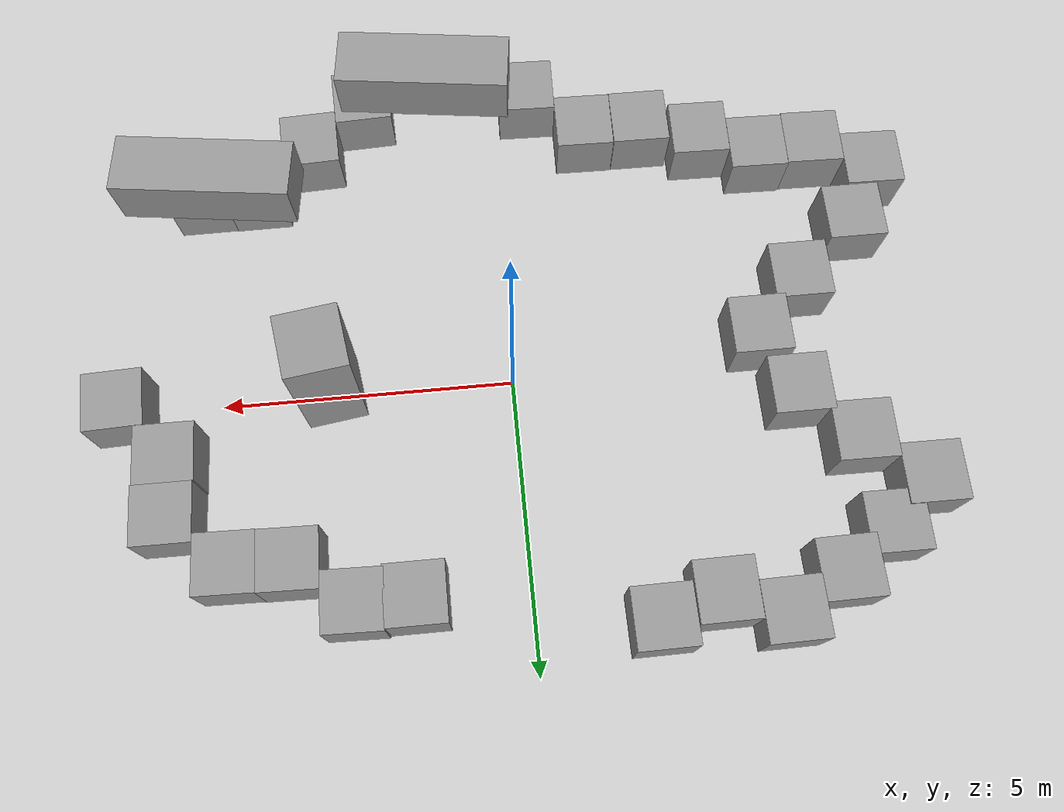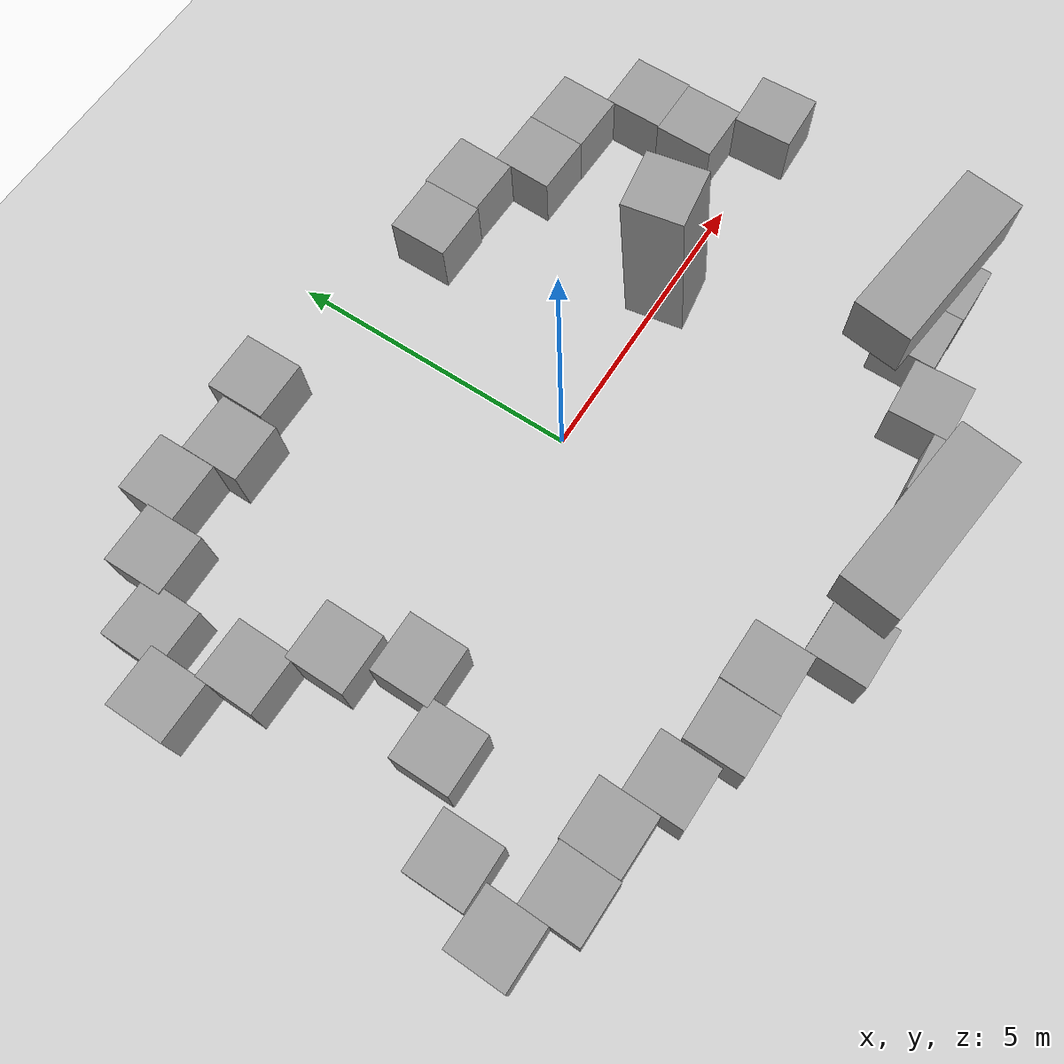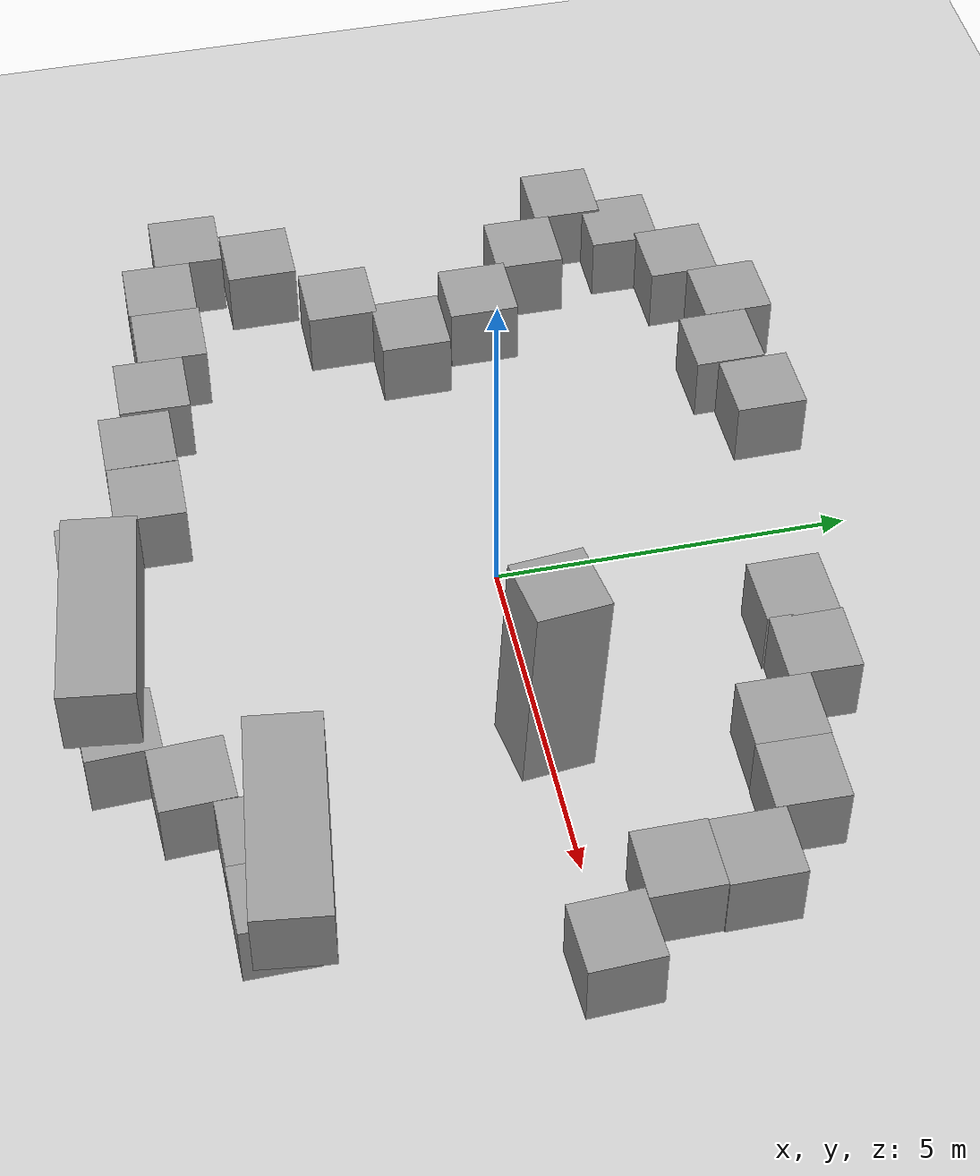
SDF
<sdf version="1.6">
 <world name="default">
  <light name="sun" type="directional">
   <pose>0 0 10 0 -0 0</pose>
   <diffuse>0.8 0.8 0.8 1</diffuse>
   <specular>0.2 0.2 0.2 1</specular>
   <attenuation>
    <range>1000</range>
    <constant>0.9</constant>
    <linear>0.01</linear>
    <quadratic>0.001</quadratic>
   </attenuation>
   <direction>-0.5 0.1 -0.9</direction>
  </light>
  <model name="ground_plane">
   <static>1</static>
   <link name="link">
    <collision name="collision">
     <geometry><plane><normal>0 0 1</normal><size>100 100</size></plane></geometry>
     <surface><friction><ode><mu>100</mu><mu2>50</mu2></ode></friction></surface>
    </collision>
    <visual name="visual">
     <cast_shadows>0</cast_shadows>
     <geometry><plane><normal>0 0 1</normal><size>100 100</size></plane></geometry>
     <material>
      <script><uri>file://media/materials/scripts/gazebo.material</uri><name>Gazebo/Grey</name></script>
     </material>
    </visual>
   </link>
  </model>
  <gravity>0 0 -9.8</gravity>
  <magnetic_field>6e-06 2.3e-05 -4.2e-05</magnetic_field>
  <atmosphere type="adiabatic"/>
  <physics name="default_physics" default="0" type="ode">
   <max_step_size>0.001</max_step_size>
   <real_time_factor>1</real_time_factor>
   <real_time_update_rate>1000</real_time_update_rate>
  </physics>
  <scene><ambient>0.4 0.4 0.4 1</ambient><background>0.7 0.7 0.7 1</background><shadows>1</shadows></scene>
  <audio><device>default</device></audio>
  <spherical_coordinates>
   <surface_model>EARTH_WGS84</surface_model>
   <latitude_deg>0</latitude_deg>
   <longitude_deg>0</longitude_deg>
   <elevation>0</elevation>
   <heading_deg>0</heading_deg>
  </spherical_coordinates>
  <model name="unit_box_0">
   <pose>1.84713 3.62294 0.5 0 -0 0</pose>
   <link name="link">
    <inertial>
     <mass>1</mass>
     <inertia>
      <ixx>0.166667</ixx>
      <ixy>0</ixy>
      <ixz>0</ixz>
      <iyy>0.166667</iyy>
      <iyz>0</iyz>
      <izz>0.166667</izz>
     </inertia>
    </inertial>
    <collision name="collision"><geometry><box><size>1 1 1</size></box></geometry></collision>
    <visual name="visual">
     <geometry><box><size>1 1 1</size></box></geometry>
     <material>
      <script><name>Gazebo/Grey</name><uri>file://media/materials/scripts/gazebo.material</uri></script>
     </material>
    </visual>
   </link>
  </model>
  <model name="unit_box_1">
   <pose>-1.98102 4.32508 0.5 0 -0 0.008716</pose>
   <link name="link">
    <inertial>
     <mass>1</mass>
     <inertia>
      <ixx>0.166667</ixx>
      <ixy>0</ixy>
      <ixz>0</ixz>
      <iyy>0.166667</iyy>
      <iyz>0</iyz>
      <izz>0.166667</izz>
     </inertia>
    </inertial>
    <collision name="collision"><geometry><box><size>1 1 1</size></box></geometry></collision>
    <visual name="visual">
     <geometry><box><size>1 1 1</size></box></geometry>
     <material>
      <script><name>Gazebo/Grey</name><uri>file://media/materials/scripts/gazebo.material</uri></script>
     </material>
    </visual>
   </link>
  </model>
  <model name="unit_box_2">
   <pose>-2.99925 4.0063 0.5 0 -0 0.008629</pose>
   <link name="link">
    <inertial>
     <mass>1</mass>
     <inertia>
      <ixx>0.166667</ixx>
      <ixy>0</ixy>
      <ixz>0</ixz>
      <iyy>0.166667</iyy>
      <iyz>0</iyz>
      <izz>0.166667</izz>
     </inertia>
    </inertial>
    <collision name="collision"><geometry><box><size>1 1 1</size></box></geometry></collision>
    <visual name="visual">
     <geometry><box><size>1 1 1</size></box></geometry>
     <material>
      <script><name>Gazebo/Grey</name><uri>file://media/materials/scripts/gazebo.material</uri></script>
     </material>
    </visual>
   </link>
  </model>
  <model name="unit_box_3">
   <pose>-4.00633 4.39911 0.5 0 -0 0.012286</pose>
   <link name="link">
    <inertial>
     <mass>1</mass>
     <inertia>
      <ixx>0.166667</ixx>
      <ixy>0</ixy>
      <ixz>0</ixz>
      <iyy>0.166667</iyy>
      <iyz>0</iyz>
      <izz>0.166667</izz>
     </inertia>
    </inertial>
    <collision name="collision"><geometry><box><size>1 1 1</size></box></geometry></collision>
    <visual name="visual">
     <geometry><box><size>1 1 1</size></box></geometry>
     <material>
      <script><name>Gazebo/Grey</name><uri>file://media/materials/scripts/gazebo.material</uri></script>
     </material>
    </visual>
   </link>
  </model>
  <model name="unit_box_4">
   <pose>-4.98355 3.84136 0.5 0 -0 0.012284</pose>
   <link name="link">
    <inertial>
     <mass>1</mass>
     <inertia>
      <ixx>0.166667</ixx>
      <ixy>0</ixy>
      <ixz>0</ixz>
      <iyy>0.166667</iyy>
      <iyz>0</iyz>
      <izz>0.166667</izz>
     </inertia>
    </inertial>
    <collision name="collision"><geometry><box><size>1 1 1</size></box></geometry></collision>
    <visual name="visual">
     <geometry><box><size>1 1 1</size></box></geometry>
     <material>
      <script><name>Gazebo/Grey</name><uri>file://media/materials/scripts/gazebo.material</uri></script>
     </material>
    </visual>
   </link>
  </model>
  <model name="unit_box_5">
   <pose>-6.61875 2.44429 0.5 0 0 -0.0059</pose>
   <link name="link">
    <inertial>
     <mass>1</mass>
     <inertia>
      <ixx>0.166667</ixx>
      <ixy>0</ixy>
      <ixz>0</ixz>
      <iyy>0.166667</iyy>
      <iyz>0</iyz>
      <izz>0.166667</izz>
     </inertia>
    </inertial>
    <collision name="collision"><geometry><box><size>1 1 1</size></box></geometry></collision>
    <visual name="visual">
     <geometry><box><size>1 1 1</size></box></geometry>
     <material>
      <script><name>Gazebo/Grey</name><uri>file://media/materials/scripts/gazebo.material</uri></script>
     </material>
    </visual>
   </link>
  </model>
  <model name="unit_box_6">
   <pose>-5.87131 3.17687 0.467482 0 0 -0.005916</pose>
   <link name="link">
    <inertial>
     <mass>1</mass>
     <inertia>
      <ixx>0.166667</ixx>
      <ixy>0</ixy>
      <ixz>0</ixz>
      <iyy>0.166667</iyy>
      <iyz>0</iyz>
      <izz>0.166667</izz>
     </inertia>
    </inertial>
    <collision name="collision"><geometry><box><size>1 1 1</size></box></geometry></collision>
    <visual name="visual">
     <geometry><box><size>1 1 1</size></box></geometry>
     <material>
      <script><name>Gazebo/Grey</name><uri>file://media/materials/scripts/gazebo.material</uri></script>
     </material>
    </visual>
   </link>
  </model>
  <model name="unit_box_7">
   <pose>-5.63953 1.64367 0.5 0 0 -0.010261</pose>
   <link name="link">
    <inertial>
     <mass>1</mass>
     <inertia>
      <ixx>0.166667</ixx>
      <ixy>0</ixy>
      <ixz>0</ixz>
      <iyy>0.166667</iyy>
      <iyz>0</iyz>
      <izz>0.166667</izz>
     </inertia>
    </inertial>
    <collision name="collision"><geometry><box><size>1 1 1</size></box></geometry></collision>
    <visual name="visual">
     <geometry><box><size>1 1 1</size></box></geometry>
     <material>
      <script><name>Gazebo/Grey</name><uri>file://media/materials/scripts/gazebo.material</uri></script>
     </material>
    </visual>
   </link>
  </model>
  <model name="unit_box_8">
   <pose>-4.73991 0.755255 0.504537 0 0 -1.5e-05</pose>
   <link name="link">
    <inertial>
     <mass>1</mass>
     <inertia>
      <ixx>0.166667</ixx>
      <ixy>0</ixy>
      <ixz>0</ixz>
      <iyy>0.166667</iyy>
      <iyz>0</iyz>
      <izz>0.166667</izz>
     </inertia>
    </inertial>
    <collision name="collision"><geometry><box><size>1 1 1</size></box></geometry></collision>
    <visual name="visual">
     <geometry><box><size>1 1 1</size></box></geometry>
     <material>
      <script><name>Gazebo/Grey</name><uri>file://media/materials/scripts/gazebo.material</uri></script>
     </material>
    </visual>
   </link>
  </model>
  <model name="unit_box_9">
   <pose>2.82459 3.64121 0.5 0 -0 -0.023665</pose>
   <link name="link">
    <inertial>
     <mass>1</mass>
     <inertia>
      <ixx>0.166667</ixx>
      <ixy>0</ixy>
      <ixz>0</ixz>
      <iyy>0.166667</iyy>
      <iyz>0</iyz>
      <izz>0.166667</izz>
     </inertia>
    </inertial>
    <collision name="collision"><geometry><box><size>1 1 1</size></box></geometry></collision>
    <visual name="visual">
     <geometry><box><size>1 1 1</size></box></geometry>
     <material>
      <script><name>Gazebo/Grey</name><uri>file://media/materials/scripts/gazebo.material</uri></script>
     </material>
    </visual>
   </link>
  </model>
  <model name="unit_box_10">
   <pose>3.80832 2.90521 0.499995 1e-05 -0 -0.022347</pose>
   <link name="link">
    <inertial>
     <mass>1</mass>
     <inertia>
      <ixx>0.166667</ixx>
      <ixy>0</ixy>
      <ixz>0</ixz>
      <iyy>0.166667</iyy>
      <iyz>0</iyz>
      <izz>0.166667</izz>
     </inertia>
    </inertial>
    <collision name="collision"><geometry><box><size>1 1 1</size></box></geometry></collision>
    <visual name="visual">
     <geometry><box><size>1 1 1</size></box></geometry>
     <material>
      <script><name>Gazebo/Grey</name><uri>file://media/materials/scripts/gazebo.material</uri></script>
     </material>
    </visual>
   </link>
  </model>
  <model name="unit_box_11">
   <pose>4.80791 2.87568 0.499995 1e-05 -0 -0.022347</pose>
   <link name="link">
    <inertial>
     <mass>1</mass>
     <inertia>
      <ixx>0.166667</ixx>
      <ixy>0</ixy>
      <ixz>0</ixz>
      <iyy>0.166667</iyy>
      <iyz>0</iyz>
      <izz>0.166667</izz>
     </inertia>
    </inertial>
    <collision name="collision"><geometry><box><size>1 1 1</size></box></geometry></collision>
    <visual name="visual">
     <geometry><box><size>1 1 1</size></box></geometry>
     <material>
      <script><name>Gazebo/Grey</name><uri>file://media/materials/scripts/gazebo.material</uri></script>
     </material>
    </visual>
   </link>
  </model>
  <model name="unit_box_12">
   <pose>-4.24627 -0.352512 0.5 0 -0 1e-05</pose>
   <link name="link">
    <inertial>
     <mass>1</mass>
     <inertia>
      <ixx>0.166667</ixx>
      <ixy>0</ixy>
      <ixz>0</ixz>
      <iyy>0.166667</iyy>
      <iyz>0</iyz>
      <izz>0.166667</izz>
     </inertia>
    </inertial>
    <collision name="collision"><geometry><box><size>1 1 1</size></box></geometry></collision>
    <visual name="visual">
     <geometry><box><size>1 1 1</size></box></geometry>
     <material>
      <script><name>Gazebo/Grey</name><uri>file://media/materials/scripts/gazebo.material</uri></script>
     </material>
    </visual>
   </link>
  </model>
  <model name="unit_box_13">
   <pose>-5.09581 -1.28623 0.5 0 -0 1e-05</pose>
   <link name="link">
    <inertial>
     <mass>1</mass>
     <inertia>
      <ixx>0.166667</ixx>
      <ixy>0</ixy>
      <ixz>0</ixz>
      <iyy>0.166667</iyy>
      <iyz>0</iyz>
      <izz>0.166667</izz>
     </inertia>
    </inertial>
    <collision name="collision"><geometry><box><size>1 1 1</size></box></geometry></collision>
    <visual name="visual">
     <geometry><box><size>1 1 1</size></box></geometry>
     <material>
      <script><name>Gazebo/Grey</name><uri>file://media/materials/scripts/gazebo.material</uri></script>
     </material>
    </visual>
   </link>
  </model>
  <model name="unit_box_14">
   <pose>-6.22091 -2.30561 0.5 0 -0 1e-05</pose>
   <link name="link">
    <inertial>
     <mass>1</mass>
     <inertia>
      <ixx>0.166667</ixx>
      <ixy>0</ixy>
      <ixz>0</ixz>
      <iyy>0.166667</iyy>
      <iyz>0</iyz>
      <izz>0.166667</izz>
     </inertia>
    </inertial>
    <collision name="collision"><geometry><box><size>1 1 1</size></box></geometry></collision>
    <visual name="visual">
     <geometry><box><size>1 1 1</size></box></geometry>
     <material>
      <script><name>Gazebo/Grey</name><uri>file://media/materials/scripts/gazebo.material</uri></script>
     </material>
    </visual>
   </link>
  </model>
  <model name="unit_box_15">
   <pose>-6.73539 -3.32737 0.5 0 0 -0.019647</pose>
   <link name="link">
    <inertial>
     <mass>1</mass>
     <inertia>
      <ixx>0.166667</ixx>
      <ixy>0</ixy>
      <ixz>0</ixz>
      <iyy>0.166667</iyy>
      <iyz>0</iyz>
      <izz>0.166667</izz>
     </inertia>
    </inertial>
    <collision name="collision"><geometry><box><size>1 1 1</size></box></geometry></collision>
    <visual name="visual">
     <geometry><box><size>1 1 1</size></box></geometry>
     <material>
      <script><name>Gazebo/Grey</name><uri>file://media/materials/scripts/gazebo.material</uri></script>
     </material>
    </visual>
   </link>
  </model>
  <model name="unit_box_16">
   <pose>-5.74521 -3.83863 0.5 -0 -0 -0.019634</pose>
   <link name="link">
    <inertial>
     <mass>1</mass>
     <inertia>
      <ixx>0.166667</ixx>
      <ixy>0</ixy>
      <ixz>0</ixz>
      <iyy>0.166667</iyy>
      <iyz>0</iyz>
      <izz>0.166667</izz>
     </inertia>
    </inertial>
    <collision name="collision"><geometry><box><size>1 1 1</size></box></geometry></collision>
    <visual name="visual">
     <geometry><box><size>1 1 1</size></box></geometry>
     <material>
      <script><name>Gazebo/Grey</name><uri>file://media/materials/scripts/gazebo.material</uri></script>
     </material>
    </visual>
   </link>
  </model>
  <model name="unit_box_17">
   <pose>-4.7446 -3.83329 0.5 0 -0 -0.01951</pose>
   <link name="link">
    <inertial>
     <mass>1</mass>
     <inertia>
      <ixx>0.166667</ixx>
      <ixy>0</ixy>
      <ixz>0</ixz>
      <iyy>0.166667</iyy>
      <iyz>0</iyz>
      <izz>0.166667</izz>
     </inertia>
    </inertial>
    <collision name="collision"><geometry><box><size>1 1 1</size></box></geometry></collision>
    <visual name="visual">
     <geometry><box><size>1 1 1</size></box></geometry>
     <material>
      <script><name>Gazebo/Grey</name><uri>file://media/materials/scripts/gazebo.material</uri></script>
     </material>
    </visual>
   </link>
  </model>
  <model name="unit_box_18">
   <pose>-3.75046 -4.21159 0.5 0 0 -0.017254</pose>
   <link name="link">
    <inertial>
     <mass>1</mass>
     <inertia>
      <ixx>0.166667</ixx>
      <ixy>0</ixy>
      <ixz>0</ixz>
      <iyy>0.166667</iyy>
      <iyz>0</iyz>
      <izz>0.166667</izz>
     </inertia>
    </inertial>
    <collision name="collision"><geometry><box><size>1 1 1</size></box></geometry></collision>
    <visual name="visual">
     <geometry><box><size>1 1 1</size></box></geometry>
     <material>
      <script><name>Gazebo/Grey</name><uri>file://media/materials/scripts/gazebo.material</uri></script>
     </material>
    </visual>
   </link>
  </model>
  <model name="unit_box_19">
   <pose>-2.70443 -4.53962 0.5 0 -0 -0.007557</pose>
   <link name="link">
    <inertial>
     <mass>1</mass>
     <inertia>
      <ixx>0.166667</ixx>
      <ixy>0</ixy>
      <ixz>0</ixz>
      <iyy>0.166667</iyy>
      <iyz>0</iyz>
      <izz>0.166667</izz>
     </inertia>
    </inertial>
    <collision name="collision"><geometry><box><size>1 1 1</size></box></geometry></collision>
    <visual name="visual">
     <geometry><box><size>1 1 1</size></box></geometry>
     <material>
      <script><name>Gazebo/Grey</name><uri>file://media/materials/scripts/gazebo.material</uri></script>
     </material>
    </visual>
   </link>
  </model>
  <model name="unit_box_20">
   <pose>-1.69842 -4.54366 0.5 0 -0 -0.017418</pose>
   <link name="link">
    <inertial>
     <mass>1</mass>
     <inertia>
      <ixx>0.166667</ixx>
      <ixy>0</ixy>
      <ixz>0</ixz>
      <iyy>0.166667</iyy>
      <iyz>0</iyz>
      <izz>0.166667</izz>
     </inertia>
    </inertial>
    <collision name="collision"><geometry><box><size>1 1 1</size></box></geometry></collision>
    <visual name="visual">
     <geometry><box><size>1 1 1</size></box></geometry>
     <material>
      <script><name>Gazebo/Grey</name><uri>file://media/materials/scripts/gazebo.material</uri></script>
     </material>
    </visual>
   </link>
  </model>
  <model name="unit_box_21">
   <pose>-0.714626 -5.36743 0.5 0 0 -0.024202</pose>
   <link name="link">
    <inertial>
     <mass>1</mass>
     <inertia>
      <ixx>0.166667</ixx>
      <ixy>0</ixy>
      <ixz>0</ixz>
      <iyy>0.166667</iyy>
      <iyz>0</iyz>
      <izz>0.166667</izz>
     </inertia>
    </inertial>
    <collision name="collision"><geometry><box><size>1 1 1</size></box></geometry></collision>
    <visual name="visual">
     <geometry><box><size>1 1 1</size></box></geometry>
     <material>
      <script><name>Gazebo/Grey</name><uri>file://media/materials/scripts/gazebo.material</uri></script>
     </material>
    </visual>
   </link>
  </model>
  <model name="unit_box_24">
   <pose>2.27602 -5.41742 0.5 0 -0 0.041227</pose>
   <link name="link">
    <inertial>
     <mass>1</mass>
     <inertia>
      <ixx>0.166667</ixx>
      <ixy>0</ixy>
      <ixz>0</ixz>
      <iyy>0.166667</iyy>
      <iyz>0</iyz>
      <izz>0.166667</izz>
     </inertia>
    </inertial>
    <collision name="collision"><geometry><box><size>1 1 1</size></box></geometry></collision>
    <visual name="visual">
     <geometry><box><size>1 1 1</size></box></geometry>
     <material>
      <script><name>Gazebo/Grey</name><uri>file://media/materials/scripts/gazebo.material</uri></script>
     </material>
    </visual>
   </link>
  </model>
  <model name="unit_box_25">
   <pose>3.24362 -4.60672 0.5 0 -0 0.041246</pose>
   <link name="link">
    <inertial>
     <mass>1</mass>
     <inertia>
      <ixx>0.166667</ixx>
      <ixy>0</ixy>
      <ixz>0</ixz>
      <iyy>0.166667</iyy>
      <iyz>0</iyz>
      <izz>0.166667</izz>
     </inertia>
    </inertial>
    <collision name="collision"><geometry><box><size>1 1 1</size></box></geometry></collision>
    <visual name="visual">
     <geometry><box><size>1 1 1</size></box></geometry>
     <material>
      <script><name>Gazebo/Grey</name><uri>file://media/materials/scripts/gazebo.material</uri></script>
     </material>
    </visual>
   </link>
  </model>
  <model name="unit_box_26">
   <pose>4.23327 -3.89811 0.5 0 -0 0.004499</pose>
   <link name="link">
    <inertial>
     <mass>1</mass>
     <inertia>
      <ixx>0.166667</ixx>
      <ixy>0</ixy>
      <ixz>0</ixz>
      <iyy>0.166667</iyy>
      <iyz>0</iyz>
      <izz>0.166667</izz>
     </inertia>
    </inertial>
    <collision name="collision"><geometry><box><size>1 1 1</size></box></geometry></collision>
    <visual name="visual">
     <geometry><box><size>1 1 1</size></box></geometry>
     <material>
      <script><name>Gazebo/Grey</name><uri>file://media/materials/scripts/gazebo.material</uri></script>
     </material>
    </visual>
   </link>
  </model>
  <model name="unit_box_27">
   <pose>5.23335 -3.90239 0.5 0 -0 0.004442</pose>
   <link name="link">
    <inertial>
     <mass>1</mass>
     <inertia>
      <ixx>0.166667</ixx>
      <ixy>0</ixy>
      <ixz>0</ixz>
      <iyy>0.166667</iyy>
      <iyz>0</iyz>
      <izz>0.166667</izz>
     </inertia>
    </inertial>
    <collision name="collision"><geometry><box><size>1 1 1</size></box></geometry></collision>
    <visual name="visual">
     <geometry><box><size>1 1 1</size></box></geometry>
     <material>
      <script><name>Gazebo/Grey</name><uri>file://media/materials/scripts/gazebo.material</uri></script>
     </material>
    </visual>
   </link>
  </model>
  <model name="unit_box_31">
   <pose>6.62566 0.010737 0.499995 -1e-05 -0 0.036914</pose>
   <link name="link">
    <inertial>
     <mass>1</mass>
     <inertia>
      <ixx>0.166667</ixx>
      <ixy>0</ixy>
      <ixz>0</ixz>
      <iyy>0.166667</iyy>
      <iyz>0</iyz>
      <izz>0.166667</izz>
     </inertia>
    </inertial>
    <collision name="collision"><geometry><box><size>1 1 1</size></box></geometry></collision>
    <visual name="visual">
     <geometry><box><size>1 1 1</size></box></geometry>
     <material>
      <script><name>Gazebo/Grey</name><uri>file://media/materials/scripts/gazebo.material</uri></script>
     </material>
    </visual>
   </link>
  </model>
  <model name="unit_box_33">
   <pose>5.79707 2.00039 0.5 -0 -0 -0.005262</pose>
   <link name="link">
    <inertial>
     <mass>1</mass>
     <inertia>
      <ixx>0.166667</ixx>
      <ixy>0</ixy>
      <ixz>0</ixz>
      <iyy>0.166667</iyy>
      <iyz>0</iyz>
      <izz>0.166667</izz>
     </inertia>
    </inertial>
    <collision name="collision"><geometry><box><size>1 1 1</size></box></geometry></collision>
    <visual name="visual">
     <geometry><box><size>1 1 1</size></box></geometry>
     <material>
      <script><name>Gazebo/Grey</name><uri>file://media/materials/scripts/gazebo.material</uri></script>
     </material>
    </visual>
   </link>
  </model>
  <model name="unit_box_34">
   <pose>5.77114 1.00051 0.499995 -0 -1e-05 -0.005261</pose>
   <link name="link">
    <inertial>
     <mass>1</mass>
     <inertia>
      <ixx>0.166667</ixx>
      <ixy>0</ixy>
      <ixz>0</ixz>
      <iyy>0.166667</iyy>
      <iyz>0</iyz>
      <izz>0.166667</izz>
     </inertia>
    </inertial>
    <collision name="collision"><geometry><box><size>1 1 1</size></box></geometry></collision>
    <visual name="visual">
     <geometry><box><size>1 1 1</size></box></geometry>
     <material>
      <script><name>Gazebo/Grey</name><uri>file://media/materials/scripts/gazebo.material</uri></script>
     </material>
    </visual>
   </link>
  </model>
  <model name="unit_box_3x1x1">
   <link name="link">
    <inertial>
     <mass>1</mass>
     <inertia>
      <ixx>0.166667</ixx>
      <ixy>0</ixy>
      <ixz>0</ixz>
      <iyy>0.166667</iyy>
      <iyz>0</iyz>
      <izz>0.166667</izz>
     </inertia>
    </inertial>
    <visual name="visual">
     <geometry><box><size>3 1 1</size></box></geometry>
     <material>
      <script><name>Gazebo/Grey</name><uri>file://media/materials/scripts/gazebo.material</uri></script>
      <shader type="vertex"><normal_map>__default__</normal_map></shader>
      <ambient>0.3 0.3 0.3 1</ambient>
      <diffuse>0.7 0.7 0.7 1</diffuse>
      <specular>0.01 0.01 0.01 1</specular>
      <emissive>0 0 0 1</emissive>
     </material>
    </visual>
    <collision name="collision">
     <geometry><box><size>1 1 1</size></box></geometry>
     <surface>
      <friction>
       <ode><mu>1</mu><mu2>1</mu2><fdir1>0 0 0</fdir1><slip1>0</slip1><slip2>0</slip2></ode>
       <torsional>
        <coefficient>1</coefficient>
        <patch_radius>0</patch_radius>
        <surface_radius>0</surface_radius>
        <use_patch_radius>1</use_patch_radius>
        <ode><slip>0</slip></ode>
       </torsional>
      </friction>
      <bounce><restitution_coefficient>0</restitution_coefficient><threshold>1e+06</threshold></bounce>
      <contact>
       <collide_without_contact>0</collide_without_contact>
       <collide_without_contact_bitmask>1</collide_without_contact_bitmask>
       <collide_bitmask>1</collide_bitmask>
       <ode>
        <soft_cfm>0</soft_cfm>
        <soft_erp>0.2</soft_erp>
        <kp>1e+13</kp>
        <kd>1</kd>
        <max_vel>0.01</max_vel>
        <min_depth>0</min_depth>
       </ode>
       <bullet>
        <split_impulse>1</split_impulse>
        <split_impulse_penetration_threshold>-0.01</split_impulse_penetration_threshold>
        <soft_cfm>0</soft_cfm>
        <soft_erp>0.2</soft_erp>
        <kp>1e+13</kp>
        <kd>1</kd>
       </bullet>
      </contact>
     </surface>
    </collision>
   </link>
   <static>0</static>
   <pose>4.89212 -3.60837 1.57522 0 0 -0.126831</pose>
  </model>
  <model name="unit_box_3x1x1_clone">
   <link name="link">
    <inertial>
     <mass>1</mass>
     <inertia>
      <ixx>0.166667</ixx>
      <ixy>0</ixy>
      <ixz>0</ixz>
      <iyy>0.166667</iyy>
      <iyz>0</iyz>
      <izz>0.166667</izz>
     </inertia>
    </inertial>
    <visual name="visual">
     <geometry><box><size>3 1 1</size></box></geometry>
     <material>
      <script><name>Gazebo/Grey</name><uri>file://media/materials/scripts/gazebo.material</uri></script>
      <shader type="vertex"><normal_map>__default__</normal_map></shader>
      <ambient>0.3 0.3 0.3 1</ambient>
      <diffuse>0.7 0.7 0.7 1</diffuse>
      <specular>0.01 0.01 0.01 1</specular>
      <emissive>0 0 0 1</emissive>
     </material>
    </visual>
    <collision name="collision">
     <geometry><box><size>1 1 1</size></box></geometry>
     <surface>
      <friction>
       <ode><mu>1</mu><mu2>1</mu2><fdir1>0 0 0</fdir1><slip1>0</slip1><slip2>0</slip2></ode>
       <torsional>
        <coefficient>1</coefficient>
        <patch_radius>0</patch_radius>
        <surface_radius>0</surface_radius>
        <use_patch_radius>1</use_patch_radius>
        <ode><slip>0</slip></ode>
       </torsional>
      </friction>
      <bounce><restitution_coefficient>0</restitution_coefficient><threshold>1e+06</threshold></bounce>
      <contact>
       <collide_without_contact>0</collide_without_contact>
       <collide_without_contact_bitmask>1</collide_without_contact_bitmask>
       <collide_bitmask>1</collide_bitmask>
       <ode>
        <soft_cfm>0</soft_cfm>
        <soft_erp>0.2</soft_erp>
        <kp>1e+13</kp>
        <kd>1</kd>
        <max_vel>0.01</max_vel>
        <min_depth>0</min_depth>
       </ode>
       <bullet>
        <split_impulse>1</split_impulse>
        <split_impulse_penetration_threshold>-0.01</split_impulse_penetration_threshold>
        <soft_cfm>0</soft_cfm>
        <soft_erp>0.2</soft_erp>
        <kp>1e+13</kp>
        <kd>1</kd>
       </bullet>
      </contact>
     </surface>
    </collision>
   </link>
   <static>0</static>
   <pose>1.08212 -5.42657 1.48196 0 0 -0.126831</pose>
  </model>
  <light name="user_directional_light_0" type="directional">
   <pose>-0.010337 0.095254 1 0 -0 0</pose>
   <diffuse>0.5 0.5 0.5 1</diffuse>
   <specular>0.1 0.1 0.1 1</specular>
   <direction>0.1 0.1 -0.9</direction>
   <attenuation>
    <range>20</range>
    <constant>0.5</constant>
    <linear>0.01</linear>
    <quadratic>0.001</quadratic>
   </attenuation>
  </light>
  <model name="unit_box_3x1x1_clone_0">
   <link name="link">
    <inertial>
     <mass>1</mass>
     <inertia>
      <ixx>0.166667</ixx>
      <ixy>0</ixy>
      <ixz>0</ixz>
      <iyy>0.166667</iyy>
      <iyz>0</iyz>
      <izz>0.166667</izz>
     </inertia>
    </inertial>
    <visual name="visual">
     <geometry><box><size>3 1 1</size></box></geometry>
     <material>
      <script><name>Gazebo/Grey</name><uri>file://media/materials/scripts/gazebo.material</uri></script>
      <shader type="vertex"><normal_map>__default__</normal_map></shader>
      <ambient>0.3 0.3 0.3 1</ambient>
      <diffuse>0.7 0.7 0.7 1</diffuse>
      <specular>0.01 0.01 0.01 1</specular>
      <emissive>0 0 0 1</emissive>
     </material>
    </visual>
    <collision name="collision">
     <geometry><box><size>1 1 1</size></box></geometry>
     <surface>
      <friction>
       <ode><mu>1</mu><mu2>1</mu2><fdir1>0 0 0</fdir1><slip1>0</slip1><slip2>0</slip2></ode>
       <torsional>
        <coefficient>1</coefficient>
        <patch_radius>0</patch_radius>
        <surface_radius>0</surface_radius>
        <use_patch_radius>1</use_patch_radius>
        <ode><slip>0</slip></ode>
       </torsional>
      </friction>
      <bounce><restitution_coefficient>0</restitution_coefficient><threshold>1e+06</threshold></bounce>
      <contact>
       <collide_without_contact>0</collide_without_contact>
       <collide_without_contact_bitmask>1</collide_without_contact_bitmask>
       <collide_bitmask>1</collide_bitmask>
       <ode>
        <soft_cfm>0</soft_cfm>
        <soft_erp>0.2</soft_erp>
        <kp>1e+13</kp>
        <kd>1</kd>
        <max_vel>0.01</max_vel>
        <min_depth>0</min_depth>
       </ode>
       <bullet>
        <split_impulse>1</split_impulse>
        <split_impulse_penetration_threshold>-0.01</split_impulse_penetration_threshold>
        <soft_cfm>0</soft_cfm>
        <soft_erp>0.2</soft_erp>
        <kp>1e+13</kp>
        <kd>1</kd>
       </bullet>
      </contact>
     </surface>
    </collision>
   </link>
   <static>0</static>
   <pose>3.03888 0.050462 1.6485 1.85571 1.50716 -1.13898</pose>
  </model>
 </world>
</sdf>
